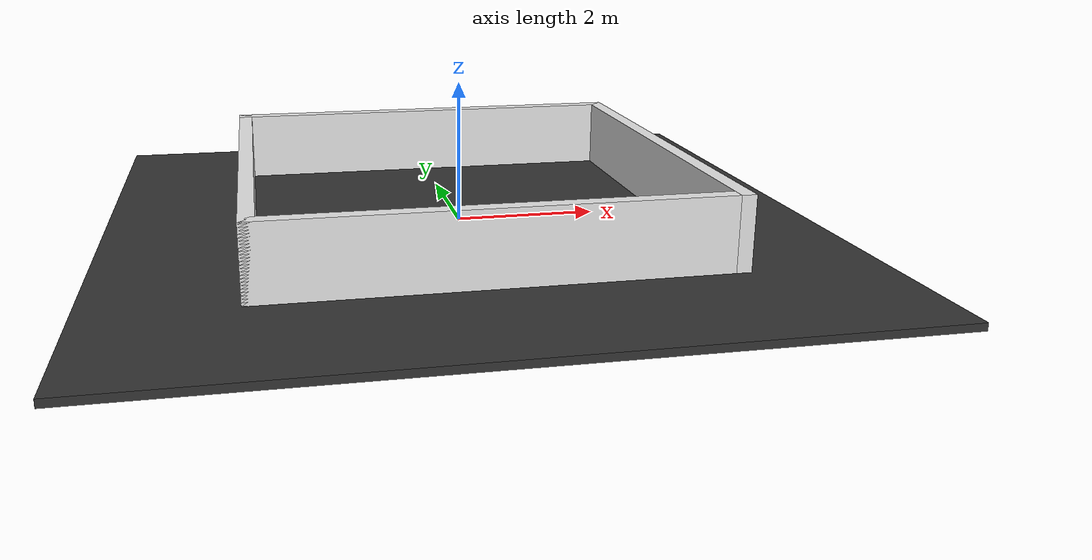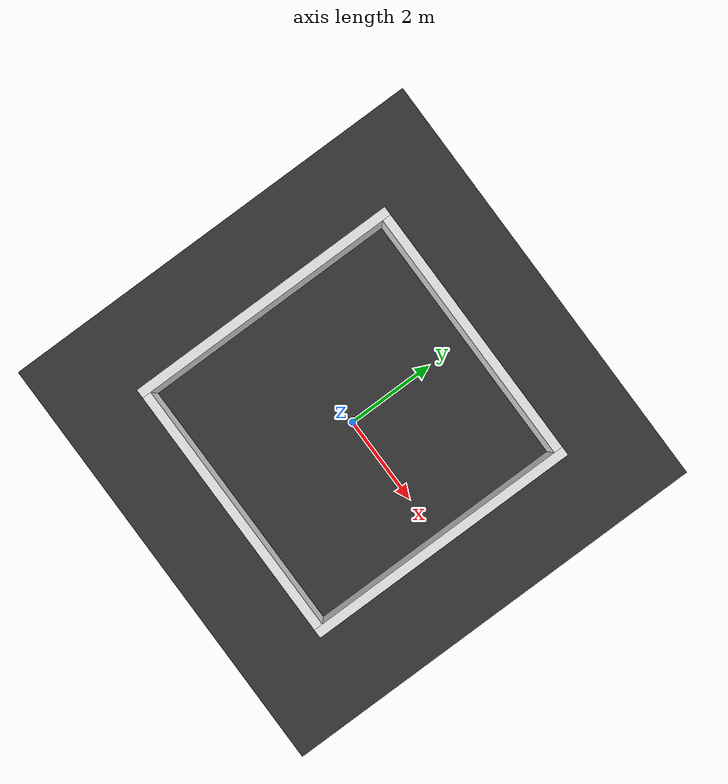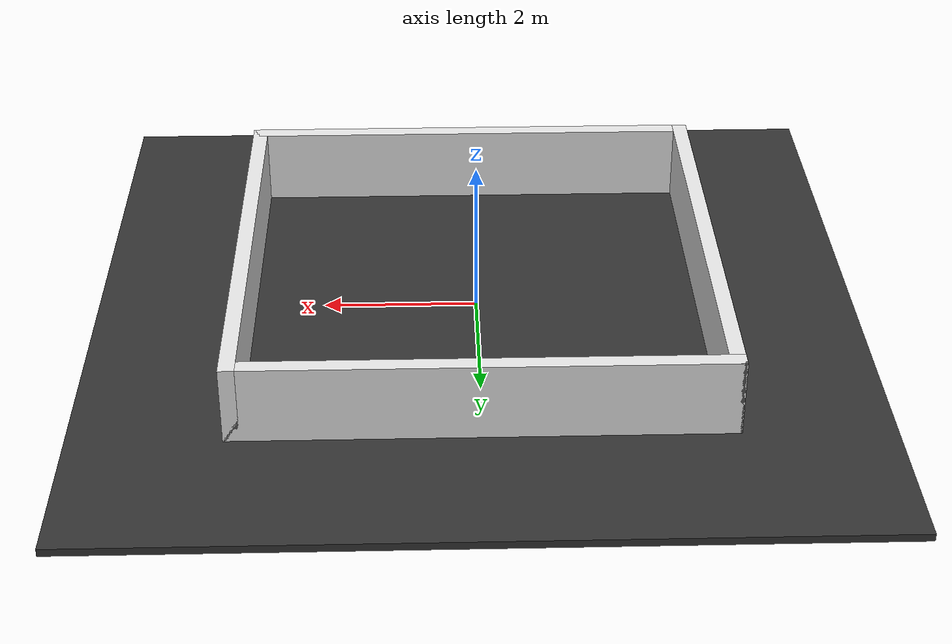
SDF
<?xml version="1.0"?>
<sdf version="1.6">
    <world name="walls_world">
        <physics name="experiment_physics" type="ignored">
            <max_step_size>0.002</max_step_size>
            <real_time_factor>2.0</real_time_factor>
        </physics>
        <scene>
            <ambient>0.8 0.8 0.8 1</ambient>
            <background>1 1 1 1</background>
        </scene>

        <light name="sun" type="directional">
            <pose>0 0 10 0 0 0</pose>
            <diffuse>0.8 0.8 0.8 1</diffuse>
            <specular>0.2 0.2 0.2 1</specular>
            <direction>-0.5 0.1 -0.9</direction>
        </light>

        <model name="ground_plane">
            <static>true</static>
            <link name="ground_link">
                <pose>0 0 -0.05 0 0 0</pose>
                <collision name="collision">
                    <geometry>
                        <box>
                            <size>10 10 0.1</size>
                        </box>
                    </geometry>
                    <surface>
                        <friction>
                            <ode>
                                <mu>1.5</mu>
                                <mu2>1.5</mu2>
                            </ode>
                        </friction>
                    </surface>
                </collision>
                <visual name="visual">
                    <geometry>
                        <box>
                            <size>10 10 0.1</size>
                        </box>
                    </geometry>
                    <material>
                        <ambient>0.2 0.2 0.2 1</ambient>
                        <diffuse>0.2 0.2 0.2 1</diffuse>
                    </material>
                </visual>
            </link>
        </model>

        <model name="front_wall">
            <static>false</static>
            <pose>3 0 0.5 0 0 0</pose>

            <link name="base_link">
                <pose>0 0 -0.35 0 0 0</pose>
                <inertial>
                    <mass>100</mass>
                    <inertia>
                        <ixx>1</ixx>
                        <iyy>1</iyy>
                        <izz>1</izz>
                    </inertia>
                </inertial>
            </link>

            <link name="wall_link">
                <inertial>
                    <pose>0 0 0.05 0 0 0</pose>
                    <mass>1</mass>
                    <inertia>
                        <ixx>2.166667</ixx>
                        <iyy>0.086667</iyy>
                        <izz>2.086667</izz>
                        <ixy>0</ixy>
                        <ixz>0</ixz>
                        <iyz>0</iyz>
                    </inertia>
                </inertial>
                <collision name="collision">
                    <pose>0 0 0.05 0 0 0</pose>
                    <geometry>
                        <box>
                            <size>0.2 5.0 1</size>
                        </box>
                    </geometry>
                </collision>
                <visual name="visual">
                    <pose>0 0 0.05 0 0 0</pose>
                    <geometry>
                        <box>
                            <size>0.2 6.2 1</size>
                        </box>
                    </geometry>
                    <material>
                        <ambient>0.9 0.9 0.9 1</ambient>
                        <diffuse>0.9 0.9 0.9 1</diffuse>
                    </material>
                </visual>
            </link>

            <joint name="base_fixed" type="fixed">
                <parent>world</parent>
                <child>base_link</child>
            </joint>

            <joint name="front_hinge" type="revolute">
                <pose>0 0 -0.35 0 0 0</pose>
                <parent>base_link</parent>
                <child>wall_link</child>
                <axis>
                    <xyz>0 1 0</xyz>
                    <limit>
                        <lower>-1.5708</lower>
                        <upper>1.5708</upper>
                    </limit>
                </axis>
            </joint>
            <plugin filename="ignition-gazebo-joint-state-publisher-system"
                name="ignition::gazebo::systems::JointStatePublisher" />
        </model>

        <model name="back_wall">
            <static>false</static>
            <pose>-3 0 0.5 0 0 0</pose>

            <link name="base_link">
                <pose>0 0 -0.35 0 0 0</pose>
                <inertial>
                    <mass>100</mass>
                    <inertia>
                        <ixx>1</ixx>
                        <iyy>1</iyy>
                        <izz>1</izz>
                    </inertia>
                </inertial>
            </link>

            <link name="wall_link">
                <inertial>
                    <pose>0 0 0.05 0 0 0</pose>
                    <mass>1</mass>
                    <inertia>
                        <ixx>2.166667</ixx>
                        <iyy>0.086667</iyy>
                        <izz>2.086667</izz>
                        <ixy>0</ixy>
                        <ixz>0</ixz>
                        <iyz>0</iyz>
                    </inertia>
                </inertial>
                <collision name="collision">
                    <pose>0 0 0.05 0 0 0</pose>
                    <geometry>
                        <box>
                            <size>0.2 5.0 1</size>
                        </box>
                    </geometry>
                </collision>
                <visual name="visual">
                    <pose>0 0 0.05 0 0 0</pose>
                    <geometry>
                        <box>
                            <size>0.2 6.2 1</size>
                        </box>
                    </geometry>
                    <material>
                        <ambient>0.9 0.9 0.9 1</ambient>
                        <diffuse>0.9 0.9 0.9 1</diffuse>
                    </material>
                </visual>
            </link>

            <joint name="base_fixed" type="fixed">
                <parent>world</parent>
                <child>base_link</child>
            </joint>

            <joint name="back_hinge" type="revolute">
                <pose>0 0 -0.35 0 0 0</pose>
                <parent>base_link</parent>
                <child>wall_link</child>
                <axis>
                    <xyz>0 1 0</xyz>
                    <limit>
                        <lower>-1.5708</lower>
                        <upper>1.5708</upper>
                    </limit>
                </axis>
            </joint>
            <plugin filename="ignition-gazebo-joint-state-publisher-system"
                name="ignition::gazebo::systems::JointStatePublisher" />
        </model>

        <model name="left_wall">
            <static>false</static>
            <pose>0 3 0.5 0 0 0</pose>

            <link name="base_link">
                <pose>0 0 -0.35 0 0 0</pose>
                <inertial>
                    <mass>100</mass>
                    <inertia>
                        <ixx>1</ixx>
                        <iyy>1</iyy>
                        <izz>1</izz>
                    </inertia>
                </inertial>
            </link>

            <link name="wall_link">
                <inertial>
                    <pose>0 0 0.05 0 0 0</pose>
                    <mass>1</mass>
                    <inertia>
                        <ixx>0.086667</ixx>
                        <iyy>2.166667</iyy>
                        <izz>2.086667</izz>
                        <ixy>0</ixy>
                        <ixz>0</ixz>
                        <iyz>0</iyz>
                    </inertia>
                </inertial>
                <collision name="collision">
                    <pose>0 0 0.05 0 0 0</pose>
                    <geometry>
                        <box>
                            <size>5.0 0.2 1</size>
                        </box>
                    </geometry>
                </collision>
                <visual name="visual">
                    <pose>0 0 0.05 0 0 0</pose>
                    <geometry>
                        <box>
                            <size>6.2 0.2 1</size>
                        </box>
                    </geometry>
                    <material>
                        <ambient>0.9 0.9 0.9 1</ambient>
                        <diffuse>0.9 0.9 0.9 1</diffuse>
                    </material>
                </visual>
            </link>

            <joint name="base_fixed" type="fixed">
                <parent>world</parent>
                <child>base_link</child>
            </joint>

            <joint name="left_hinge" type="revolute">
                <pose>0 0 -0.35 0 0 0</pose>
                <parent>base_link</parent>
                <child>wall_link</child>
                <axis>
                    <xyz>1 0 0</xyz>
                    <limit>
                        <lower>-1.5708</lower>
                        <upper>1.5708</upper>
                    </limit>
                </axis>
            </joint>
            <plugin filename="ignition-gazebo-joint-state-publisher-system"
                name="ignition::gazebo::systems::JointStatePublisher" />
        </model>

        <model name="right_wall">
            <static>false</static>
            <pose>0 -3 0.5 0 0 0</pose>

            <link name="base_link">
                <pose>0 0 -0.35 0 0 0</pose>
                <inertial>
                    <mass>100</mass>
                    <inertia>
                        <ixx>1</ixx>
                        <iyy>1</iyy>
                        <izz>1</izz>
                    </inertia>
                </inertial>
            </link>

            <link name="wall_link">
                <inertial>
                    <pose>0 0 0.05 0 0 0</pose>
                    <mass>1</mass>
                    <inertia>
                        <ixx>0.086667</ixx>
                        <iyy>2.166667</iyy>
                        <izz>2.086667</izz>
                        <ixy>0</ixy>
                        <ixz>0</ixz>
                        <iyz>0</iyz>
                    </inertia>
                </inertial>
                <collision name="collision">
                    <pose>0 0 0.05 0 0 0</pose>
                    <geometry>
                        <box>
                            <size>5.0 0.2 1</size>
                        </box>
                    </geometry>
                </collision>
                <visual name="visual">
                    <pose>0 0 0.05 0 0 0</pose>
                    <geometry>
                        <box>
                            <size>6.2 0.2 1</size>
                        </box>
                    </geometry>
                    <material>
                        <ambient>0.9 0.9 0.9 1</ambient>
                        <diffuse>0.9 0.9 0.9 1</diffuse>
                    </material>
                </visual>
            </link>

            <joint name="base_fixed" type="fixed">
                <parent>world</parent>
                <child>base_link</child>
            </joint>

            <joint name="right_hinge" type="revolute">
                <pose>0 0 -0.35 0 0 0</pose>
                <parent>base_link</parent>
                <child>wall_link</child>
                <axis>
                    <xyz>1 0 0</xyz>
                    <limit>
                        <lower>-1.5708</lower>
                        <upper>1.5708</upper>
                    </limit>
                </axis>
            </joint>
            <plugin filename="ignition-gazebo-joint-state-publisher-system"
                name="ignition::gazebo::systems::JointStatePublisher" />
        </model>
    </world>
</sdf>
